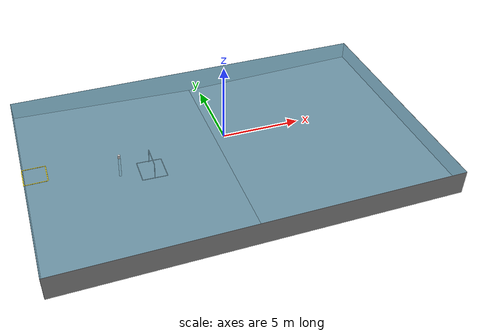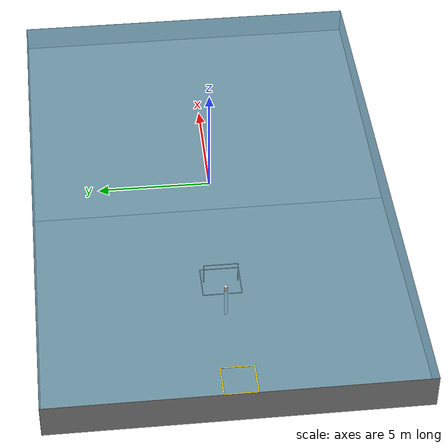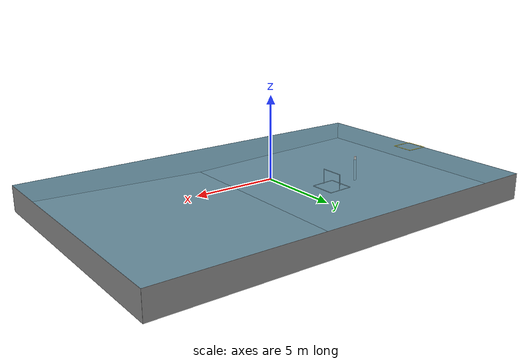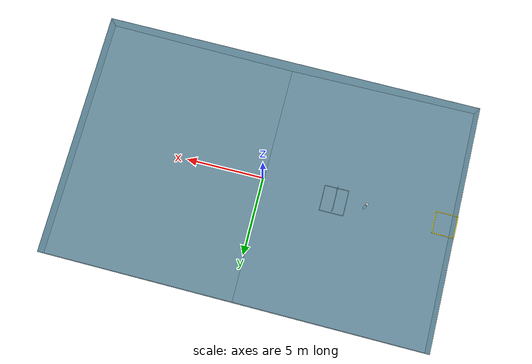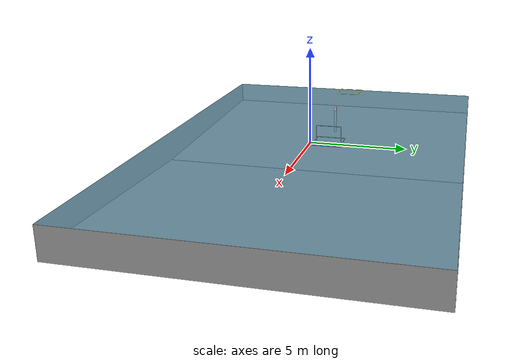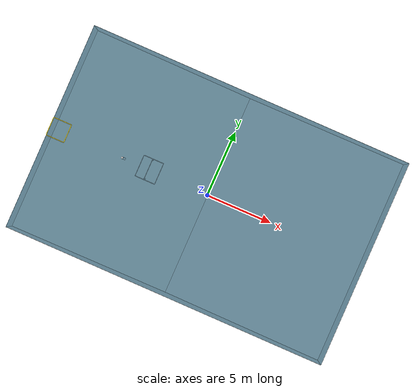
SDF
<sdf version="1.9">
 <world name="task_navigation">
  <plugin filename="gz-sim-particle-emitter-system" name="gz::sim::systems::ParticleEmitter"/>
  <plugin filename="gz-sim-physics-system" name="gz::sim::systems::Physics"/>
  <plugin filename="gz-sim-user-commands-system" name="gz::sim::systems::UserCommands"/>
  <plugin filename="gz-sim-scene-broadcaster-system" name="gz::sim::systems::SceneBroadcaster"/>
  <plugin filename="gz-sim-apply-link-wrench-system" name="gz::sim::systems::ApplyLinkWrench"/>
  <plugin filename="gz-sim-imu-system" name="gz::sim::systems::Imu"/>
  <plugin filename="gz-sim-sensors-system" name="gz::sim::systems::Sensors">
   <render_engine>ogre2</render_engine>
  </plugin>
  <plugin filename="gz-sim-dvl-system" name="gz::sim::systems::DopplerVelocityLogSystem"/>
  <plugin filename="gz-sim-buoyancy-system" name="gz::sim::systems::Buoyancy">
   <graded_buoyancy>
    <default_density>1000</default_density>
    <density_change><above_depth>0</above_depth><density>1</density></density_change>
   </graded_buoyancy>
   <enable>duburi</enable>
   <enable>payload_shot_0</enable>
   <enable>payload_shot_1</enable>
   <enable>payload_shot_2</enable>
   <enable>payload_shot_3</enable>
   <enable>payload_shot_4</enable>
   <enable>payload_shot_5</enable>
   <enable>payload_shot_6</enable>
   <enable>payload_shot_7</enable>
   <enable>payload_shot_8</enable>
   <enable>payload_shot_9</enable>
   <enable>payload_shot_10</enable>
   <enable>payload_shot_11</enable>
  </plugin>
  <physics name="default" type="dart">
   <max_step_size>0.001</max_step_size>
   <real_time_factor>1.0</real_time_factor>
   <real_time_update_rate>1000</real_time_update_rate>
   <dart>
    <collision_detector>bullet</collision_detector>
    <solver><solver_type>dantzig</solver_type></solver>
   </dart>
  </physics>
  <gravity>0 0 -9.81</gravity>
  <magnetic_field>3.9e-05 1.1e-06 2.6e-05</magnetic_field>
  <atmosphere type="adiabatic"/>
  <scene>
   <ambient>0.28 0.4 0.48 1</ambient>
   <background>0.08 0.26 0.4 1</background>
   <shadows>true</shadows>
   <fog>
    <color>0.14 0.34 0.42 1</color>
    <type>linear</type>
    <start>2.0</start>
    <end>22.0</end>
    <density>0.018</density>
   </fog>
  </scene>
  <light type="directional" name="sun">
   <pose>0 0 10 0 0 0</pose>
   <diffuse>0.48 0.52 0.56 1</diffuse>
   <specular>0.10 0.10 0.11 1</specular>
   <direction>-0.4 0.15 -0.9</direction>
  </light>
  <light type="directional" name="fill">
   <cast_shadows>false</cast_shadows>
   <pose>0 0 5 0 0 0</pose>
   <diffuse>0.22 0.28 0.34 1</diffuse>
   <specular>0.04 0.05 0.06 1</specular>
   <direction>0.3 -0.2 -1</direction>
  </light>
  <light type="directional" name="caustic_fill">
   <cast_shadows>false</cast_shadows>
   <pose>0 0 3 0 0 0</pose>
   <diffuse>0.12 0.22 0.26 1</diffuse>
   <specular>0.02 0.03 0.04 1</specular>
   <direction>0.1 0.35 -0.85</direction>
  </light>
  <model name="sauvc_pool">
   <static>true</static>
   <link name="floor_neg">
    <pose>-6.25 0 -1.4 0 0.0319891 0</pose>
    <inertial>
     <mass>1000</mass>
     <inertia><ixx>1000</ixx><ixy>0</ixy><ixz>0</ixz><iyy>1000</iyy><iyz>0</iyz><izz>1000</izz></inertia>
    </inertial>
    <visual name="floor_neg_visual">
     <pose>0 0 0.005 0 0 0</pose>
     <geometry><box><size>12.5064 16 0.01</size></box></geometry>
     <material>
      <ambient>0.55 0.55 0.55 1</ambient>
      <diffuse>0.55 0.55 0.55 1</diffuse>
      <specular>0.08 0.08 0.08 1</specular>
      <emissive>0 0 0 1</emissive>
      <pbr>
       <metal>
        <albedo_map>model://sauvc_textures/pool_floor_neg.png</albedo_map>
        <metalness>0.0</metalness>
        <roughness>0.85</roughness>
       </metal>
      </pbr>
     </material>
    </visual>
    <collision name="floor_neg_collision">
     <pose>0 0 -0.05 0 0 0</pose>
     <geometry><box><size>12.5064 16 0.1</size></box></geometry>
    </collision>
   </link>
   <link name="floor_pos">
    <pose>6.25 0 -1.4 0 -0.0319891 0</pose>
    <inertial>
     <mass>1000</mass>
     <inertia><ixx>1000</ixx><ixy>0</ixy><ixz>0</ixz><iyy>1000</iyy><iyz>0</iyz><izz>1000</izz></inertia>
    </inertial>
    <visual name="floor_pos_visual">
     <pose>0 0 0.005 0 0 0</pose>
     <geometry><box><size>12.5064 16 0.01</size></box></geometry>
     <material>
      <ambient>0.55 0.55 0.55 1</ambient>
      <diffuse>0.55 0.55 0.55 1</diffuse>
      <specular>0.08 0.08 0.08 1</specular>
      <emissive>0 0 0 1</emissive>
      <pbr>
       <metal>
        <albedo_map>model://sauvc_textures/pool_floor_pos.png</albedo_map>
        <metalness>0.0</metalness>
        <roughness>0.85</roughness>
       </metal>
      </pbr>
     </material>
    </visual>
    <collision name="floor_pos_collision">
     <pose>0 0 -0.05 0 0 0</pose>
     <geometry><box><size>12.5064 16 0.1</size></box></geometry>
    </collision>
   </link>
   <link name="wall_x_pos">
    <inertial>
     <mass>1000</mass>
     <inertia><ixx>1000</ixx><ixy>0</ixy><ixz>0</ixz><iyy>1000</iyy><iyz>0</iyz><izz>1000</izz></inertia>
    </inertial>
    <visual name="wall_x_pos_visual">
     <pose>12.5 0 -0.8 0 0 0</pose>
     <geometry><box><size>0.01 16 1.6</size></box></geometry>
     <material>
      <ambient>0.55 0.55 0.55 1</ambient>
      <diffuse>0.55 0.55 0.55 1</diffuse>
      <specular>0.08 0.08 0.08 1</specular>
      <emissive>0 0 0 1</emissive>
      <pbr>
       <metal>
        <albedo_map>model://sauvc_textures/pool_wall_long.png</albedo_map>
        <metalness>0.0</metalness>
        <roughness>0.85</roughness>
       </metal>
      </pbr>
     </material>
    </visual>
    <collision name="wall_x_pos_collision">
     <pose>12.605 0 -0.8 0 0 0</pose>
     <geometry><box><size>0.2 16.4 1.6</size></box></geometry>
    </collision>
   </link>
   <link name="wall_x_neg">
    <inertial>
     <mass>1000</mass>
     <inertia><ixx>1000</ixx><ixy>0</ixy><ixz>0</ixz><iyy>1000</iyy><iyz>0</iyz><izz>1000</izz></inertia>
    </inertial>
    <visual name="wall_x_neg_visual">
     <pose>-12.5 0 -0.8 0 0 0</pose>
     <geometry><box><size>0.01 16 1.6</size></box></geometry>
     <material>
      <ambient>0.55 0.55 0.55 1</ambient>
      <diffuse>0.55 0.55 0.55 1</diffuse>
      <specular>0.08 0.08 0.08 1</specular>
      <emissive>0 0 0 1</emissive>
      <pbr>
       <metal>
        <albedo_map>model://sauvc_textures/pool_wall_long.png</albedo_map>
        <metalness>0.0</metalness>
        <roughness>0.85</roughness>
       </metal>
      </pbr>
     </material>
    </visual>
    <collision name="wall_x_neg_collision">
     <pose>-12.605 0 -0.8 0 0 0</pose>
     <geometry><box><size>0.2 16.4 1.6</size></box></geometry>
    </collision>
   </link>
   <link name="wall_y_pos">
    <inertial>
     <mass>1000</mass>
     <inertia><ixx>1000</ixx><ixy>0</ixy><ixz>0</ixz><iyy>1000</iyy><iyz>0</iyz><izz>1000</izz></inertia>
    </inertial>
    <visual name="wall_y_pos_visual">
     <pose>0 8 -0.8 0 0 0</pose>
     <geometry><box><size>25 0.01 1.6</size></box></geometry>
     <material>
      <ambient>0.55 0.55 0.55 1</ambient>
      <diffuse>0.55 0.55 0.55 1</diffuse>
      <specular>0.08 0.08 0.08 1</specular>
      <emissive>0 0 0 1</emissive>
      <pbr>
       <metal>
        <albedo_map>model://sauvc_textures/pool_wall_short.png</albedo_map>
        <metalness>0.0</metalness>
        <roughness>0.85</roughness>
       </metal>
      </pbr>
     </material>
    </visual>
    <collision name="wall_y_pos_collision">
     <pose>0 8.105 -0.8 0 0 0</pose>
     <geometry><box><size>25 0.2 1.6</size></box></geometry>
    </collision>
   </link>
   <link name="wall_y_neg">
    <inertial>
     <mass>1000</mass>
     <inertia><ixx>1000</ixx><ixy>0</ixy><ixz>0</ixz><iyy>1000</iyy><iyz>0</iyz><izz>1000</izz></inertia>
    </inertial>
    <visual name="wall_y_neg_visual">
     <pose>0 -8 -0.8 0 0 0</pose>
     <geometry><box><size>25 0.01 1.6</size></box></geometry>
     <material>
      <ambient>0.55 0.55 0.55 1</ambient>
      <diffuse>0.55 0.55 0.55 1</diffuse>
      <specular>0.08 0.08 0.08 1</specular>
      <emissive>0 0 0 1</emissive>
      <pbr>
       <metal>
        <albedo_map>model://sauvc_textures/pool_wall_short.png</albedo_map>
        <metalness>0.0</metalness>
        <roughness>0.85</roughness>
       </metal>
      </pbr>
     </material>
    </visual>
    <collision name="wall_y_neg_collision">
     <pose>0 -8.105 -0.8 0 0 0</pose>
     <geometry><box><size>25 0.2 1.6</size></box></geometry>
    </collision>
   </link>
   <link name="water_surface">
    <inertial>
     <mass>1</mass>
     <inertia><ixx>1</ixx><ixy>0</ixy><ixz>0</ixz><iyy>1</iyy><iyz>0</iyz><izz>1</izz></inertia>
    </inertial>
    <visual name="water_surface_visual">
     <cast_shadows>false</cast_shadows>
     <transparency>0.18</transparency>
     <geometry><mesh><uri>model://robosub_meshes/meshes/water_sauvc.obj</uri></mesh></geometry>
     <material>
      <ambient>0.42 0.6 0.68 1</ambient>
      <diffuse>0.42 0.6 0.68 1</diffuse>
      <specular>0.35 0.35 0.35 1</specular>
      <emissive>0.1 0.1 0.1 1</emissive>
      <pbr>
       <metal>
        <albedo_map>model://sauvc_textures/water_surface.png</albedo_map>
        <metalness>0.0</metalness>
        <roughness>0.15</roughness>
       </metal>
      </pbr>
     </material>
    </visual>
   </link>
  </model>
  <model name="marine_snow">
   <static>true</static>
   <pose>0 0 -0.8 0 0 0</pose>
   <link name="link">
    <particle_emitter name="snow" type="box">
     <emitting>true</emitting>
     <size>12 12 1.6</size>
     <particle_size>0.006 0.006 0.006</particle_size>
     <lifetime>30</lifetime>
     <min_velocity>0.004</min_velocity>
     <max_velocity>0.025</max_velocity>
     <scale_rate>0</scale_rate>
     <rate>900</rate>
     <topic>marine_snow</topic>
     <material>
      <diffuse>0.80 0.84 0.80</diffuse>
      <specular>0.05 0.05 0.05</specular>
      <pbr><metal><albedo_map>model://sauvc_textures/marine_snow.png</albedo_map></metal></pbr>
     </material>
    </particle_emitter>
   </link>
  </model>
  <include><uri>model://sauvc_starting_zone</uri><name>start</name><pose>-11.8 0 0 0 0 0</pose></include>
  <include>
   <uri>model://sauvc_final_gate</uri>
   <name>gate</name>
   <pose>-4.8 0 -1.4464 0 0.0319891 0</pose>
  </include>
  <include>
   <uri>model://sauvc_orange_flare</uri>
   <name>flare_obstacle</name>
   <pose>-6.8 0 -1.3824 0 0.0319891 0</pose>
  </include>
 </world>
</sdf>

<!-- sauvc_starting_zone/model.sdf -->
<sdf version="1.9">
  <model name="sauvc_starting_zone">
    <static>true</static>
    <plugin filename="gz-sim-label-system" name="gz::sim::systems::Label">
      <label>10</label>
    </plugin>
    <link name="edge_north">
      <pose>0.7 0 0.02 0 0 0</pose>
      <inertial>
        <pose>0 0 0 0 0 0</pose>
        <mass>0.1</mass>
        <inertia>
          <ixx>0.0163342</ixx><ixy>0</ixy><ixz>0</ixz>
          <iyy>2.16667e-05</iyy><iyz>0</iyz>
          <izz>0.0163542</izz>
        </inertia>
      </inertial>
      <visual name="edge_north_visual">
        <pose>0 0 0 0 0 0</pose>
        <cast_shadows>false</cast_shadows>
        <geometry><box><size>0.05 1.4 0.01</size></box></geometry>
        <material>
          <ambient>0.95 0.85 0.1 1</ambient>
          <diffuse>0.95 0.85 0.1 1</diffuse>
          <specular>0.06 0.06 0.06 1</specular>
          <emissive>0.22 0.22 0.22 1</emissive>
          <pbr>
            <metal>
              <albedo_map>model://sauvc_textures/albedo_fabric.png</albedo_map>
              <metalness>0.0</metalness>
              <roughness_map>model://sauvc_textures/rough_fabric.png</roughness_map>
              <normal_map>model://sauvc_textures/norm_fabric.png</normal_map>
            </metal>
          </pbr>
        </material>
      </visual>
    </link>
    <link name="edge_south">
      <pose>-0.7 0 0.02 0 0 0</pose>
      <inertial>
        <pose>0 0 0 0 0 0</pose>
        <mass>0.1</mass>
        <inertia>
          <ixx>0.0163342</ixx><ixy>0</ixy><ixz>0</ixz>
          <iyy>2.16667e-05</iyy><iyz>0</iyz>
          <izz>0.0163542</izz>
        </inertia>
      </inertial>
      <visual name="edge_south_visual">
        <pose>0 0 0 0 0 0</pose>
        <cast_shadows>false</cast_shadows>
        <geometry><box><size>0.05 1.4 0.01</size></box></geometry>
        <material>
          <ambient>0.95 0.85 0.1 1</ambient>
          <diffuse>0.95 0.85 0.1 1</diffuse>
          <specular>0.06 0.06 0.06 1</specular>
          <emissive>0.22 0.22 0.22 1</emissive>
          <pbr>
            <metal>
              <albedo_map>model://sauvc_textures/albedo_fabric.png</albedo_map>
              <metalness>0.0</metalness>
              <roughness_map>model://sauvc_textures/rough_fabric.png</roughness_map>
              <normal_map>model://sauvc_textures/norm_fabric.png</normal_map>
            </metal>
          </pbr>
        </material>
      </visual>
    </link>
    <link name="edge_east">
      <pose>0 -0.7 0.02 0 0 0</pose>
      <inertial>
        <pose>0 0 0 0 0 0</pose>
        <mass>0.1</mass>
        <inertia>
          <ixx>2.16667e-05</ixx><ixy>0</ixy><ixz>0</ixz>
          <iyy>0.0163342</iyy><iyz>0</iyz>
          <izz>0.0163542</izz>
        </inertia>
      </inertial>
      <visual name="edge_east_visual">
        <pose>0 0 0 0 0 0</pose>
        <cast_shadows>false</cast_shadows>
        <geometry><box><size>1.4 0.05 0.01</size></box></geometry>
        <material>
          <ambient>0.95 0.85 0.1 1</ambient>
          <diffuse>0.95 0.85 0.1 1</diffuse>
          <specular>0.06 0.06 0.06 1</specular>
          <emissive>0.22 0.22 0.22 1</emissive>
          <pbr>
            <metal>
              <albedo_map>model://sauvc_textures/albedo_fabric.png</albedo_map>
              <metalness>0.0</metalness>
              <roughness_map>model://sauvc_textures/rough_fabric.png</roughness_map>
              <normal_map>model://sauvc_textures/norm_fabric.png</normal_map>
            </metal>
          </pbr>
        </material>
      </visual>
    </link>
    <link name="edge_west">
      <pose>0 0.7 0.02 0 0 0</pose>
      <inertial>
        <pose>0 0 0 0 0 0</pose>
        <mass>0.1</mass>
        <inertia>
          <ixx>2.16667e-05</ixx><ixy>0</ixy><ixz>0</ixz>
          <iyy>0.0163342</iyy><iyz>0</iyz>
          <izz>0.0163542</izz>
        </inertia>
      </inertial>
      <visual name="edge_west_visual">
        <pose>0 0 0 0 0 0</pose>
        <cast_shadows>false</cast_shadows>
        <geometry><box><size>1.4 0.05 0.01</size></box></geometry>
        <material>
          <ambient>0.95 0.85 0.1 1</ambient>
          <diffuse>0.95 0.85 0.1 1</diffuse>
          <specular>0.06 0.06 0.06 1</specular>
          <emissive>0.22 0.22 0.22 1</emissive>
          <pbr>
            <metal>
              <albedo_map>model://sauvc_textures/albedo_fabric.png</albedo_map>
              <metalness>0.0</metalness>
              <roughness_map>model://sauvc_textures/rough_fabric.png</roughness_map>
              <normal_map>model://sauvc_textures/norm_fabric.png</normal_map>
            </metal>
          </pbr>
        </material>
      </visual>
    </link>
  </model>
</sdf>

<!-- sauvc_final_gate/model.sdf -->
<sdf version="1.9">
  <model name="sauvc_final_gate">
    <static>true</static>
    <plugin filename="gz-sim-label-system" name="gz::sim::systems::Label">
      <label>2</label>
    </plugin>
    <link name="top_bar">
      <pose>0 0 1 1.570796 0 0</pose>
      <inertial>
        <pose>0 0 0 0 0 0</pose>
        <mass>1</mass>
        <inertia>
          <ixx>0.1876</ixx><ixy>0</ixy><ixz>0</ixz>
          <iyy>0.1876</iyy><iyz>0</iyz>
          <izz>0.0002</izz>
        </inertia>
      </inertial>
      <visual name="top_bar_visual">
        <pose>0 0 0 0 0 0</pose>
        <geometry><cylinder><radius>0.02</radius><length>1.5</length></cylinder></geometry>
        <material>
          <ambient>0.92 0.92 0.92 1</ambient>
          <diffuse>0.92 0.92 0.92 1</diffuse>
          <specular>0.2 0.2 0.2 1</specular>
          <emissive>0.23 0.23 0.23 1</emissive>
        </material>
      </visual>
      <collision name="top_bar_collision">
        <pose>0 0 0 0 0 0</pose>
        <geometry><cylinder><radius>0.02</radius><length>1.5</length></cylinder></geometry>
      </collision>
    </link>
    <link name="post_port">
      <pose>0 0.75 0.5 0 0 0</pose>
      <inertial>
        <pose>0 0 0 0 0 0</pose>
        <mass>1</mass>
        <inertia>
          <ixx>0.0834333</ixx><ixy>0</ixy><ixz>0</ixz>
          <iyy>0.0834333</iyy><iyz>0</iyz>
          <izz>0.0002</izz>
        </inertia>
      </inertial>
      <visual name="post_port_visual">
        <pose>0 0 0 0 0 0</pose>
        <geometry><cylinder><radius>0.02</radius><length>1</length></cylinder></geometry>
        <material>
          <ambient>0.75 0.75 0.75 1</ambient>
          <diffuse>0.75 0.75 0.75 1</diffuse>
          <specular>0.25 0.25 0.25 1</specular>
          <emissive>0.12 0.12 0.12 1</emissive>
          <pbr>
            <metal>
              <albedo_map>model://sauvc_textures/gate_stripe_red.png</albedo_map>
              <metalness>0.0</metalness>
              <roughness_map>model://sauvc_textures/rough_pvc.png</roughness_map>
              <normal_map>model://sauvc_textures/norm_pvc.png</normal_map>
            </metal>
          </pbr>
        </material>
      </visual>
      <collision name="post_port_collision">
        <pose>0 0 0 0 0 0</pose>
        <geometry><cylinder><radius>0.02</radius><length>1</length></cylinder></geometry>
      </collision>
    </link>
    <link name="post_starboard">
      <pose>0 -0.75 0.5 0 0 0</pose>
      <inertial>
        <pose>0 0 0 0 0 0</pose>
        <mass>1</mass>
        <inertia>
          <ixx>0.0834333</ixx><ixy>0</ixy><ixz>0</ixz>
          <iyy>0.0834333</iyy><iyz>0</iyz>
          <izz>0.0002</izz>
        </inertia>
      </inertial>
      <visual name="post_starboard_visual">
        <pose>0 0 0 0 0 0</pose>
        <geometry><cylinder><radius>0.02</radius><length>1</length></cylinder></geometry>
        <material>
          <ambient>0.75 0.75 0.75 1</ambient>
          <diffuse>0.75 0.75 0.75 1</diffuse>
          <specular>0.25 0.25 0.25 1</specular>
          <emissive>0.12 0.12 0.12 1</emissive>
          <pbr>
            <metal>
              <albedo_map>model://sauvc_textures/gate_stripe_green.png</albedo_map>
              <metalness>0.0</metalness>
              <roughness_map>model://sauvc_textures/rough_pvc.png</roughness_map>
              <normal_map>model://sauvc_textures/norm_pvc.png</normal_map>
            </metal>
          </pbr>
        </material>
      </visual>
      <collision name="post_starboard_collision">
        <pose>0 0 0 0 0 0</pose>
        <geometry><cylinder><radius>0.02</radius><length>1</length></cylinder></geometry>
      </collision>
    </link>
    <link name="base_front">
      <pose>0.8 0 0.02 1.570796 0 0</pose>
      <inertial>
        <pose>0 0 0 0 0 0</pose>
        <mass>1</mass>
        <inertia>
          <ixx>0.240933</ixx><ixy>0</ixy><ixz>0</ixz>
          <iyy>0.240933</iyy><iyz>0</iyz>
          <izz>0.0002</izz>
        </inertia>
      </inertial>
      <visual name="base_front_visual">
        <pose>0 0 0 0 0 0</pose>
        <geometry><cylinder><radius>0.02</radius><length>1.7</length></cylinder></geometry>
        <material>
          <ambient>0.92 0.92 0.92 1</ambient>
          <diffuse>0.92 0.92 0.92 1</diffuse>
          <specular>0.2 0.2 0.2 1</specular>
          <emissive>0.23 0.23 0.23 1</emissive>
        </material>
      </visual>
      <collision name="base_front_collision">
        <pose>0 0 0 0 0 0</pose>
        <geometry><cylinder><radius>0.02</radius><length>1.7</length></cylinder></geometry>
      </collision>
    </link>
    <link name="base_back">
      <pose>-0.8 0 0.02 1.570796 0 0</pose>
      <inertial>
        <pose>0 0 0 0 0 0</pose>
        <mass>1</mass>
        <inertia>
          <ixx>0.240933</ixx><ixy>0</ixy><ixz>0</ixz>
          <iyy>0.240933</iyy><iyz>0</iyz>
          <izz>0.0002</izz>
        </inertia>
      </inertial>
      <visual name="base_back_visual">
        <pose>0 0 0 0 0 0</pose>
        <geometry><cylinder><radius>0.02</radius><length>1.7</length></cylinder></geometry>
        <material>
          <ambient>0.92 0.92 0.92 1</ambient>
          <diffuse>0.92 0.92 0.92 1</diffuse>
          <specular>0.2 0.2 0.2 1</specular>
          <emissive>0.23 0.23 0.23 1</emissive>
        </material>
      </visual>
      <collision name="base_back_collision">
        <pose>0 0 0 0 0 0</pose>
        <geometry><cylinder><radius>0.02</radius><length>1.7</length></cylinder></geometry>
      </collision>
    </link>
    <link name="base_left">
      <pose>0 0.85 0.02 0 1.570796 0</pose>
      <inertial>
        <pose>0 0 0 0 0 0</pose>
        <mass>1</mass>
        <inertia>
          <ixx>0.213433</ixx><ixy>0</ixy><ixz>0</ixz>
          <iyy>0.213433</iyy><iyz>0</iyz>
          <izz>0.0002</izz>
        </inertia>
      </inertial>
      <visual name="base_left_visual">
        <pose>0 0 0 0 0 0</pose>
        <geometry><cylinder><radius>0.02</radius><length>1.6</length></cylinder></geometry>
        <material>
          <ambient>0.92 0.92 0.92 1</ambient>
          <diffuse>0.92 0.92 0.92 1</diffuse>
          <specular>0.2 0.2 0.2 1</specular>
          <emissive>0.23 0.23 0.23 1</emissive>
        </material>
      </visual>
      <collision name="base_left_collision">
        <pose>0 0 0 0 0 0</pose>
        <geometry><cylinder><radius>0.02</radius><length>1.6</length></cylinder></geometry>
      </collision>
    </link>
    <link name="base_right">
      <pose>0 -0.85 0.02 0 1.570796 0</pose>
      <inertial>
        <pose>0 0 0 0 0 0</pose>
        <mass>1</mass>
        <inertia>
          <ixx>0.213433</ixx><ixy>0</ixy><ixz>0</ixz>
          <iyy>0.213433</iyy><iyz>0</iyz>
          <izz>0.0002</izz>
        </inertia>
      </inertial>
      <visual name="base_right_visual">
        <pose>0 0 0 0 0 0</pose>
        <geometry><cylinder><radius>0.02</radius><length>1.6</length></cylinder></geometry>
        <material>
          <ambient>0.92 0.92 0.92 1</ambient>
          <diffuse>0.92 0.92 0.92 1</diffuse>
          <specular>0.2 0.2 0.2 1</specular>
          <emissive>0.23 0.23 0.23 1</emissive>
        </material>
      </visual>
      <collision name="base_right_collision">
        <pose>0 0 0 0 0 0</pose>
        <geometry><cylinder><radius>0.02</radius><length>1.6</length></cylinder></geometry>
      </collision>
    </link>
  </model>
</sdf>

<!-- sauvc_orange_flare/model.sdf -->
<sdf version="1.9">
  <model name="sauvc_orange_flare">
    <static>true</static>
    <plugin filename="gz-sim-label-system" name="gz::sim::systems::Label">
      <label>3</label>
    </plugin>
    <link name="flare">
      <pose>0 0 0.8 0 0 0</pose>
      <inertial>
        <pose>0 0 0 0 0 0</pose>
        <mass>2</mass>
        <inertia>
          <ixx>0.429479</ixx><ixy>0</ixy><ixz>0</ixz>
          <iyy>0.429479</iyy><iyz>0</iyz>
          <izz>0.005625</izz>
        </inertia>
      </inertial>
      <visual name="flare_visual">
        <pose>0 0 0 0 0 0</pose>
        <geometry><cylinder><radius>0.075</radius><length>1.6</length></cylinder></geometry>
        <material>
          <ambient>0.8 0.8 0.8 1</ambient>
          <diffuse>0.8 0.8 0.8 1</diffuse>
          <specular>0.06 0.06 0.06 1</specular>
          <emissive>0.14 0.14 0.14 1</emissive>
          <pbr>
            <metal>
              <albedo_map>model://sauvc_textures/flare_orange.png</albedo_map>
              <metalness>0.0</metalness>
              <roughness_map>model://sauvc_textures/rough_fabric.png</roughness_map>
              <normal_map>model://sauvc_textures/norm_fabric.png</normal_map>
            </metal>
          </pbr>
        </material>
      </visual>
      <collision name="flare_collision">
        <pose>0 0 0 0 0 0</pose>
        <geometry><cylinder><radius>0.075</radius><length>1.6</length></cylinder></geometry>
      </collision>
    </link>
  </model>
</sdf>
